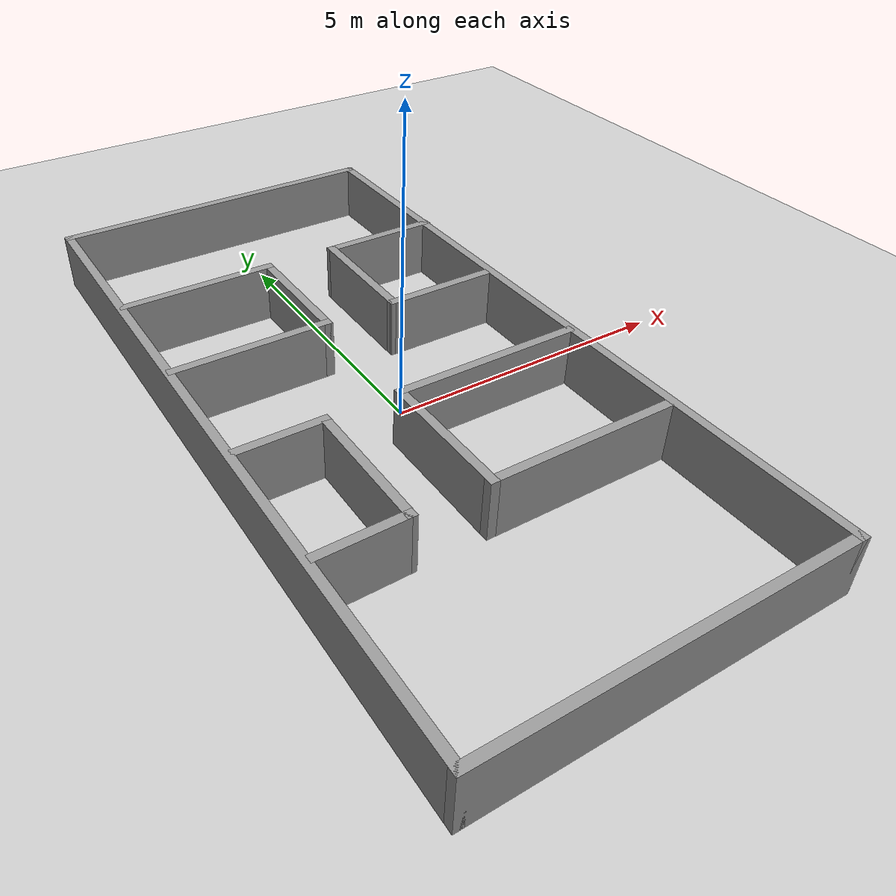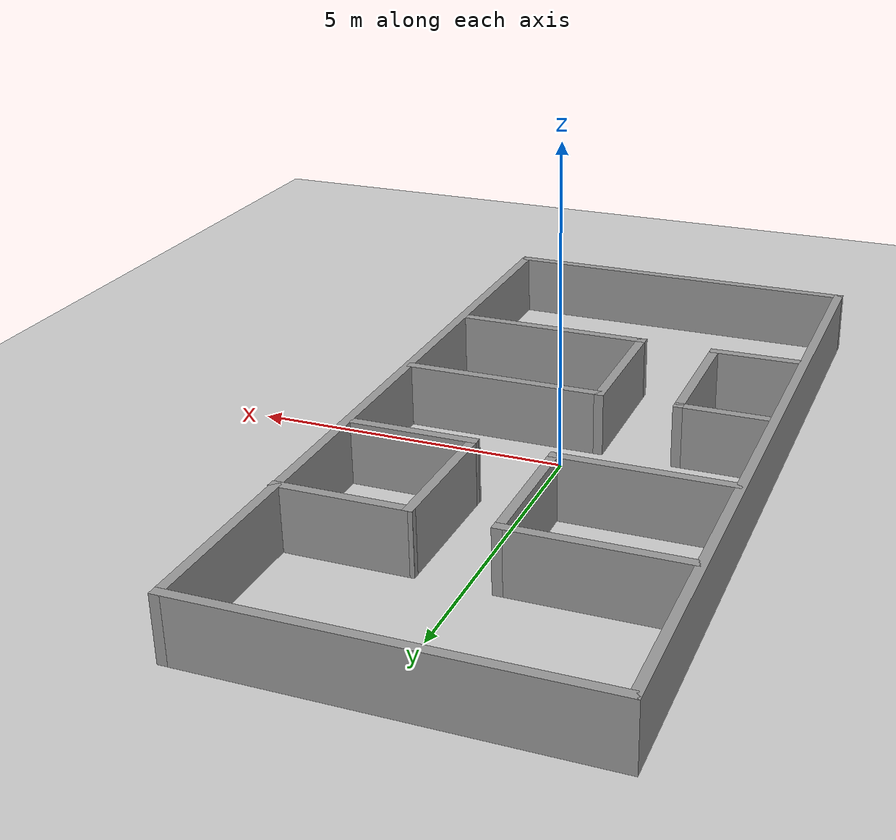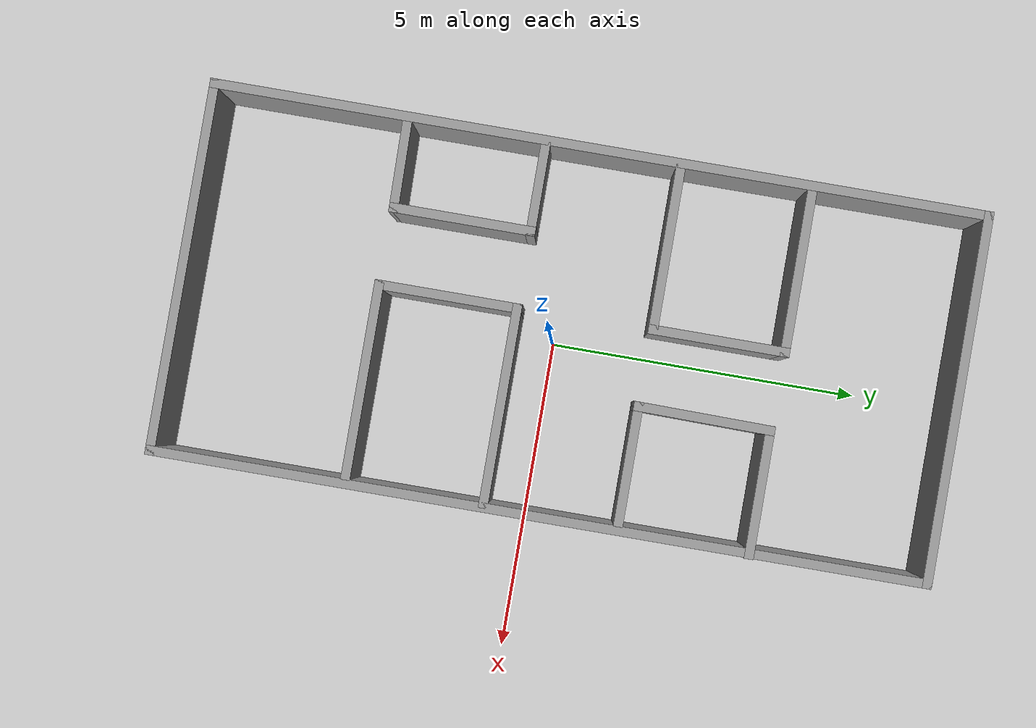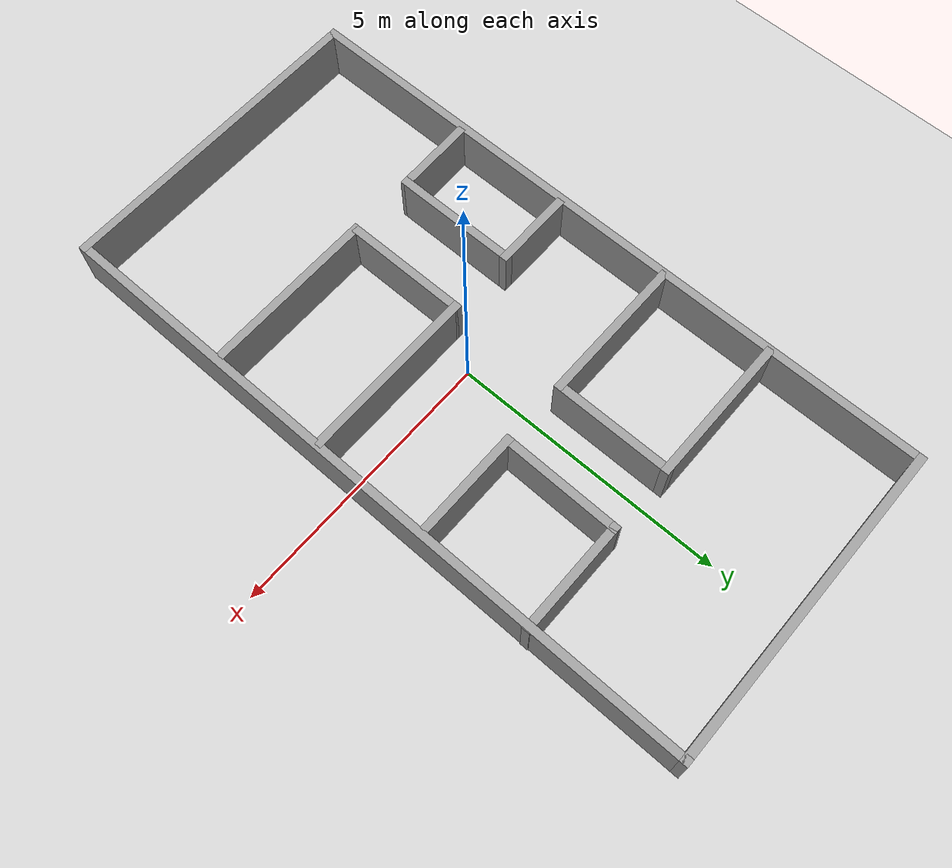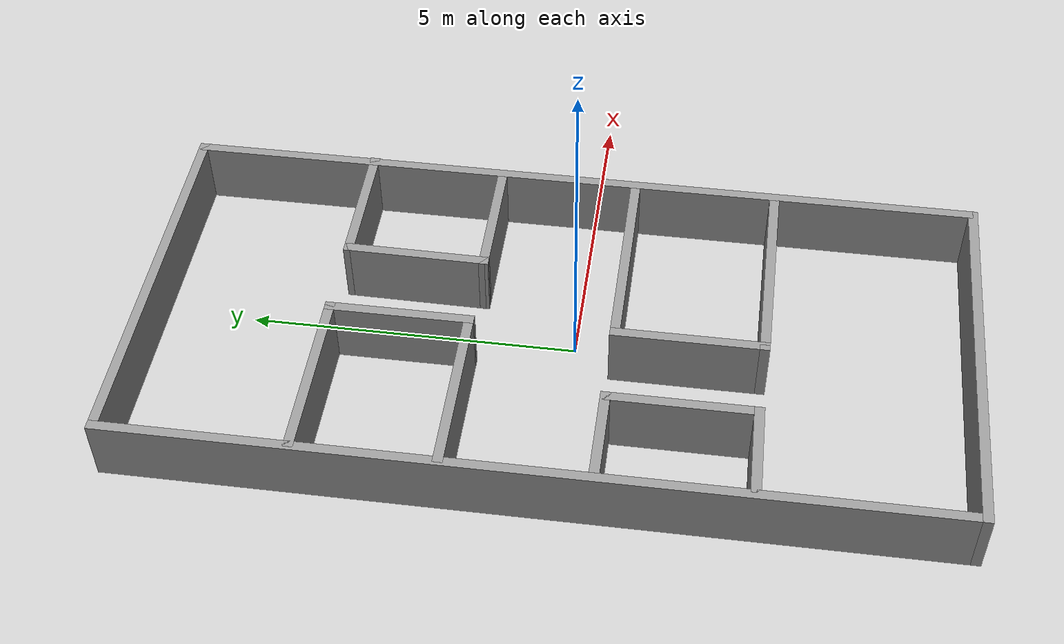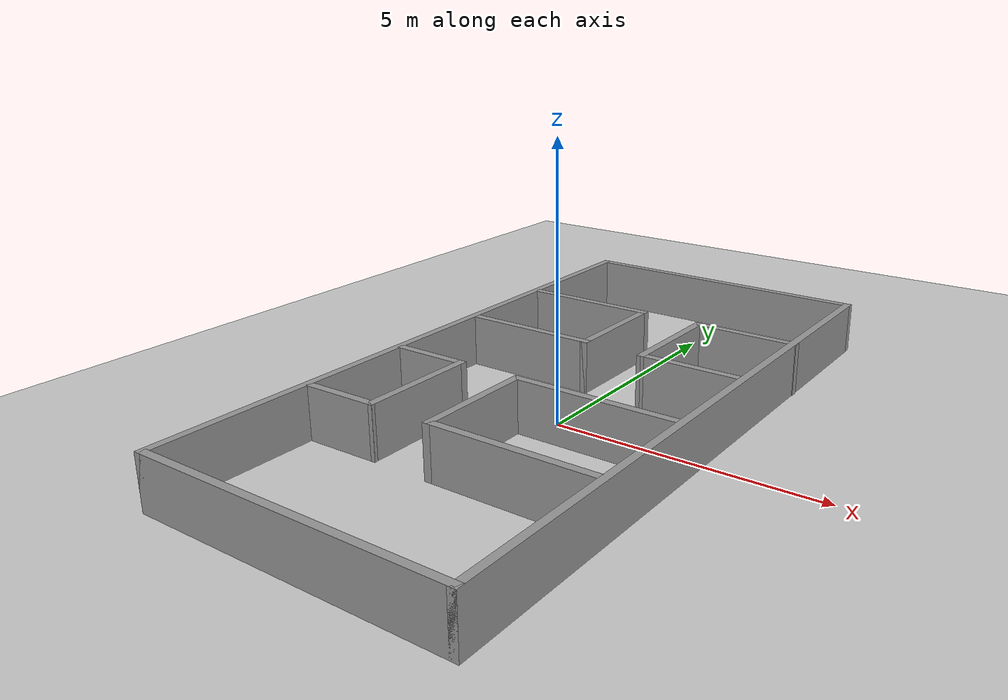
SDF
<sdf version="1.6">
 <world name="default">
  <light name="sun" type="directional">
   <pose>0 0 10 0 -0 0</pose>
   <diffuse>0.8 0.8 0.8 1</diffuse>
   <specular>0.2 0.2 0.2 1</specular>
   <attenuation>
    <range>1000</range>
    <constant>0.9</constant>
    <linear>0.01</linear>
    <quadratic>0.001</quadratic>
   </attenuation>
   <direction>-0.5 0.1 -0.9</direction>
  </light>
  <model name="ground_plane">
   <static>1</static>
   <link name="link">
    <collision name="collision">
     <geometry><plane><normal>0 0 1</normal><size>100 100</size></plane></geometry>
     <surface><friction><ode><mu>100</mu><mu2>50</mu2></ode></friction></surface>
    </collision>
    <visual name="visual">
     <cast_shadows>0</cast_shadows>
     <geometry><plane><normal>0 0 1</normal><size>100 100</size></plane></geometry>
     <material>
      <script><uri>file://media/materials/scripts/gazebo.material</uri><name>Gazebo/Grey</name></script>
     </material>
    </visual>
   </link>
  </model>
  <gravity>0 0 -9.8</gravity>
  <magnetic_field>6e-06 2.3e-05 -4.2e-05</magnetic_field>
  <atmosphere type="adiabatic"/>
  <physics name="default_physics" default="0" type="ode">
   <max_step_size>0.001</max_step_size>
   <real_time_factor>1</real_time_factor>
   <real_time_update_rate>1000</real_time_update_rate>
  </physics>
  <scene><ambient>0.4 0.4 0.4 1</ambient><background>0.7 0.7 0.7 1</background><shadows>1</shadows></scene>
  <spherical_coordinates>
   <surface_model>EARTH_WGS84</surface_model>
   <latitude_deg>0</latitude_deg>
   <longitude_deg>0</longitude_deg>
   <elevation>0</elevation>
   <heading_deg>0</heading_deg>
  </spherical_coordinates>
  <model name="Untitled">
   <pose>-0.163862 0.256 0 0 -0 0</pose>
   <link name="Wall_13">
    <collision name="Wall_13_Collision">
     <geometry><box><size>1.5 0.15 1</size></box></geometry>
     <pose>0 0 0.5 0 -0 0</pose>
    </collision>
    <visual name="Wall_13_Visual">
     <pose>0 0 0.5 0 -0 0</pose>
     <geometry><box><size>1.5 0.15 1</size></box></geometry>
     <material>
      <script><uri>file://media/materials/scripts/gazebo.material</uri><name>Gazebo/Grey</name></script>
      <ambient>1 1 1 1</ambient>
     </material>
     <meta><layer>0</layer></meta>
    </visual>
    <pose>-2.15514 -3.0725 0 0 -0 0.015554</pose>
   </link>
   <link name="Wall_14">
    <collision name="Wall_14_Collision">
     <geometry><box><size>2.33329 0.15 1</size></box></geometry>
     <pose>0 0 0.5 0 -0 0</pose>
    </collision>
    <visual name="Wall_14_Visual">
     <pose>0 0 0.5 0 -0 0</pose>
     <geometry><box><size>2.33329 0.15 1</size></box></geometry>
     <material>
      <script><uri>file://media/materials/scripts/gazebo.material</uri><name>Gazebo/Grey</name></script>
      <ambient>1 1 1 1</ambient>
     </material>
     <meta><layer>0</layer></meta>
    </visual>
    <pose>-1.48014 -1.9705 0 0 -0 1.5708</pose>
   </link>
   <link name="Wall_15">
    <collision name="Wall_15_Collision">
     <geometry><box><size>1.5 0.15 1</size></box></geometry>
     <pose>0 0 0.5 0 -0 0</pose>
    </collision>
    <visual name="Wall_15_Visual">
     <pose>0 0 0.5 0 -0 0</pose>
     <geometry><box><size>1.5 0.15 1</size></box></geometry>
     <material>
      <script><uri>file://media/materials/scripts/gazebo.material</uri><name>Gazebo/Grey</name></script>
      <ambient>1 1 1 1</ambient>
     </material>
     <meta><layer>0</layer></meta>
    </visual>
    <pose>-2.15514 -0.879 0 0 -0 3.14159</pose>
   </link>
   <link name="Wall_19">
    <collision name="Wall_19_Collision">
     <geometry><box><size>2.35 0.15 1</size></box></geometry>
     <pose>0 0 0.5 0 -0 0</pose>
    </collision>
    <visual name="Wall_19_Visual">
     <pose>0 0 0.5 0 -0 0</pose>
     <geometry><box><size>2.35 0.15 1</size></box></geometry>
     <material>
      <script><uri>file://media/materials/scripts/gazebo.material</uri><name>Gazebo/Grey</name></script>
      <ambient>1 1 1 1</ambient>
     </material>
     <meta><layer>0</layer></meta>
    </visual>
    <pose>-0.248138 -1.983 0 0 -0 1.5708</pose>
   </link>
   <link name="Wall_22">
    <collision name="Wall_22_Collision">
     <geometry><box><size>3.25 0.15 1</size></box></geometry>
     <pose>0 0 0.5 0 -0 0</pose>
    </collision>
    <visual name="Wall_22_Visual">
     <pose>0 0 0.5 0 -0 0</pose>
     <geometry><box><size>3.25 0.15 1</size></box></geometry>
     <material>
      <script><uri>file://media/materials/scripts/gazebo.material</uri><name>Gazebo/Grey</name></script>
      <ambient>1 1 1 1</ambient>
     </material>
     <meta><layer>0</layer></meta>
    </visual>
    <pose>1.30186 -0.883 0 0 -0 0</pose>
   </link>
   <link name="Wall_24">
    <collision name="Wall_24_Collision">
     <geometry><box><size>1.98645 0.15 1</size></box></geometry>
     <pose>0 0 0.5 0 -0 0</pose>
    </collision>
    <visual name="Wall_24_Visual">
     <pose>0 0 0.5 0 -0 0</pose>
     <geometry><box><size>1.98645 0.15 1</size></box></geometry>
     <material>
      <script><uri>file://media/materials/scripts/gazebo.material</uri><name>Gazebo/Grey</name></script>
      <ambient>1 1 1 1</ambient>
     </material>
     <meta><layer>0</layer></meta>
    </visual>
    <pose>1.86386 1.253 0 0 -0 3.14159</pose>
   </link>
   <link name="Wall_26">
    <collision name="Wall_26_Collision">
     <geometry><box><size>2.25 0.15 1</size></box></geometry>
     <pose>0 0 0.5 0 -0 0</pose>
    </collision>
    <visual name="Wall_26_Visual">
     <pose>0 0 0.5 0 -0 0</pose>
     <geometry><box><size>2.25 0.15 1</size></box></geometry>
     <material>
      <script><uri>file://media/materials/scripts/gazebo.material</uri><name>Gazebo/Grey</name></script>
      <ambient>1 1 1 1</ambient>
     </material>
     <meta><layer>0</layer></meta>
    </visual>
    <pose>0.957362 2.303 0 0 -0 1.55984</pose>
   </link>
   <link name="Wall_27">
    <collision name="Wall_27_Collision">
     <geometry><box><size>2.11355 0.15 1</size></box></geometry>
     <pose>0 0 0.5 0 -0 0</pose>
    </collision>
    <visual name="Wall_27_Visual">
     <pose>0 0 0.5 0 -0 0</pose>
     <geometry><box><size>2.11355 0.15 1</size></box></geometry>
     <material>
      <script><uri>file://media/materials/scripts/gazebo.material</uri><name>Gazebo/Grey</name></script>
      <ambient>1 1 1 1</ambient>
     </material>
     <meta><layer>0</layer></meta>
    </visual>
    <pose>1.95036 3.353 0 0 -0 0</pose>
   </link>
   <link name="Wall_29">
    <collision name="Wall_29_Collision">
     <geometry><box><size>2.75 0.15 1</size></box></geometry>
     <pose>0 0 0.5 0 -0 0</pose>
    </collision>
    <visual name="Wall_29_Visual">
     <pose>0 0 0.5 0 -0 0</pose>
     <geometry><box><size>2.75 0.15 1</size></box></geometry>
     <material>
      <script><uri>file://media/materials/scripts/gazebo.material</uri><name>Gazebo/Grey</name></script>
      <ambient>1 1 1 1</ambient>
     </material>
     <meta><layer>0</layer></meta>
    </visual>
    <pose>-1.58014 1.276 0 0 -0 0</pose>
   </link>
   <link name="Wall_3">
    <collision name="Wall_3_Collision">
     <geometry><box><size>12.5 0.15 1</size></box></geometry>
     <pose>0 0 0.5 0 -0 0</pose>
    </collision>
    <visual name="Wall_3_Visual">
     <pose>0 0 0.5 0 -0 0</pose>
     <geometry><box><size>12.5 0.15 1</size></box></geometry>
     <material>
      <script><uri>file://media/materials/scripts/gazebo.material</uri><name>Gazebo/Grey</name></script>
      <ambient>1 1 1 1</ambient>
     </material>
     <meta><layer>0</layer></meta>
    </visual>
    <pose>-2.93214 -0 0 0 -0 1.5708</pose>
   </link>
   <link name="Wall_30">
    <collision name="Wall_30_Collision">
     <geometry><box><size>2.25 0.15 1</size></box></geometry>
     <pose>0 0 0.5 0 -0 0</pose>
    </collision>
    <visual name="Wall_30_Visual">
     <pose>0 0 0.5 0 -0 0</pose>
     <geometry><box><size>2.25 0.15 1</size></box></geometry>
     <material>
      <script><uri>file://media/materials/scripts/gazebo.material</uri><name>Gazebo/Grey</name></script>
      <ambient>1 1 1 1</ambient>
     </material>
     <meta><layer>0</layer></meta>
    </visual>
    <pose>-0.280138 2.326 0 0 -0 1.5708</pose>
   </link>
   <link name="Wall_31">
    <collision name="Wall_31_Collision">
     <geometry><box><size>2.75 0.15 1</size></box></geometry>
     <pose>0 0 0.5 0 -0 0</pose>
    </collision>
    <visual name="Wall_31_Visual">
     <pose>0 0 0.5 0 -0 0</pose>
     <geometry><box><size>2.75 0.15 1</size></box></geometry>
     <material>
      <script><uri>file://media/materials/scripts/gazebo.material</uri><name>Gazebo/Grey</name></script>
      <ambient>1 1 1 1</ambient>
     </material>
     <meta><layer>0</layer></meta>
    </visual>
    <pose>-1.58014 3.376 0 0 -0 3.14159</pose>
   </link>
   <link name="Wall_5">
    <collision name="Wall_5_Collision">
     <geometry><box><size>6 0.15 1</size></box></geometry>
     <pose>0 0 0.5 0 -0 0</pose>
    </collision>
    <visual name="Wall_5_Visual">
     <pose>0 0 0.5 0 -0 0</pose>
     <geometry><box><size>6 0.15 1</size></box></geometry>
     <material>
      <script><uri>file://media/materials/scripts/gazebo.material</uri><name>Gazebo/Grey</name></script>
      <ambient>1 1 1 1</ambient>
     </material>
     <meta><layer>0</layer></meta>
    </visual>
    <pose>-0.007138 -6.175 0 0 -0 0</pose>
   </link>
   <link name="Wall_6">
    <collision name="Wall_6_Collision">
     <geometry><box><size>12.5 0.15 1</size></box></geometry>
     <pose>0 0 0.5 0 -0 0</pose>
    </collision>
    <visual name="Wall_6_Visual">
     <pose>0 0 0.5 0 -0 0</pose>
     <geometry><box><size>12.5 0.15 1</size></box></geometry>
     <material>
      <script><uri>file://media/materials/scripts/gazebo.material</uri><name>Gazebo/Grey</name></script>
      <ambient>1 1 1 1</ambient>
     </material>
     <meta><layer>0</layer></meta>
    </visual>
    <pose>2.91786 -0 0 0 -0 1.5708</pose>
   </link>
   <link name="Wall_7">
    <collision name="Wall_7_Collision">
     <geometry><box><size>6 0.15 1</size></box></geometry>
     <pose>0 0 0.5 0 -0 0</pose>
    </collision>
    <visual name="Wall_7_Visual">
     <pose>0 0 0.5 0 -0 0</pose>
     <geometry><box><size>6 0.15 1</size></box></geometry>
     <material>
      <script><uri>file://media/materials/scripts/gazebo.material</uri><name>Gazebo/Grey</name></script>
      <ambient>1 1 1 1</ambient>
     </material>
     <meta><layer>0</layer></meta>
    </visual>
    <pose>-0.007138 6.175 0 0 -0 3.14159</pose>
   </link>
   <link name="Wall_9">
    <collision name="Wall_9_Collision">
     <geometry><box><size>3.18 0.15 1</size></box></geometry>
     <pose>0 0 0.5 0 -0 0</pose>
    </collision>
    <visual name="Wall_9_Visual">
     <pose>0 0 0.5 0 -0 0</pose>
     <geometry><box><size>3.18 0.15 1</size></box></geometry>
     <material>
      <script><uri>file://media/materials/scripts/gazebo.material</uri><name>Gazebo/Grey</name></script>
      <ambient>1 1 1 1</ambient>
     </material>
     <meta><layer>0</layer></meta>
    </visual>
    <pose>1.26686 -3.083 0 0 -0 3.14159</pose>
   </link>
   <static>1</static>
  </model>
 </world>
</sdf>
